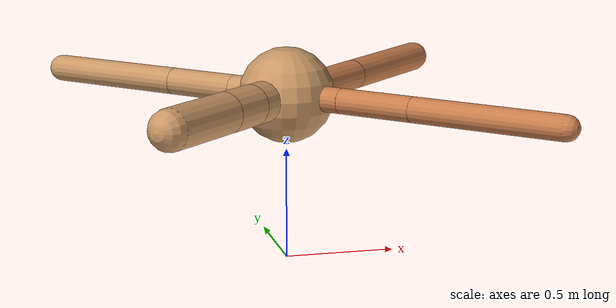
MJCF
<?xml version="1.0" ?>
<mujoco model="ant">

	<compiler angle="degree" coordinate="local" inertiafromgeom="true"/>

	<option integrator="RK4" timestep="0.01"/>

	<custom>

		<numeric data="0.0 0.0 0.55 1.0 0.0 0.0 0.0 0.0 1.0 0.0 -1.0 0.0 -1.0 0.0 1.0" name="init_qpos"/>

	</custom>

	<default>

		<joint armature="1" damping="1" limited="true"/>

		<geom conaffinity="0" condim="3" density="5.0" friction="1.5 0.1 0.1" margin="0.01" rgba="0.8 0.6 0.4 1"/>

	</default>

	<worldbody>

		<body name="torso" pos="0 0 0.75">

			<geom name="torso_geom" pos="0 0 0" size="0.21451559057587347" type="sphere"/>

			<!--joint armature="0" damping="0" limited="false" margin="0.01" name="root" pos="0 0 0" type="free"/-->

			<body name="front_left_leg" pos="0 0 0">

				<geom fromto="0 0 0 0.2 0.2 0" name="aux_1_geom" size="0.06973688005025457" type="capsule" rgba=".8 .5 .3 1"/>

				<body name="aux_1" pos="0.2 0.2 0">

					<joint axis="0 0 1" name="hip_1" pos="0.0 0.0 0.0" range="-40 40" type="hinge"/>

					<geom fromto="0 0 0 0.2156476912128929 0.2156476912128929 0" name="left_leg_geom" size="0.06973688005025457" type="capsule" rgba=".8 .5 .3 1"/>

					<body pos="0.2156476912128929 0.2156476912128929 0" name="front_left_foot">

						<joint axis="-1 1 0" name="ankle_1" pos="0.0 0.0 0.0" range="30 100" type="hinge"/>

						<geom fromto="0 0 0 0.4312953824257858 0.4312953824257858 0" name="left_ankle_geom" size="0.06973688005025457" type="capsule" rgba=".8 .5 .3 1"/>

					</body>

				</body>

			</body>

			<body name="front_right_leg" pos="0 0 0">

				<geom fromto="0 0 0 -0.2 0.2 0" name="aux_2_geom" size="0.061825308290146756" type="capsule"/>

				<body name="aux_2" pos="-0.2 0.2 0">

					<joint axis="0 0 1" name="hip_2" pos="0.0 0.0 0.0" range="-40 40" type="hinge"/>

					<geom fromto="0 0 0 -0.23610073534904363 0.23610073534904363 0" name="right_leg_geom" size="0.061825308290146756" type="capsule"/>

					<body pos="-0.23610073534904363 0.23610073534904363 0" name="front_right_foot">

						<joint axis="1 1 0" name="ankle_2" pos="0.0 0.0 0.0" range="-100 -30" type="hinge"/>

						<geom fromto="0 0 0 -0.47220147069808727 0.47220147069808727 0" name="right_ankle_geom" size="0.061825308290146756" type="capsule"/>

					</body>

				</body>

			</body>

			<body name="left_back_leg" pos="0 0 0">

				<geom fromto="0 0 0 -0.2 -0.2 0" name="aux_3_geom" size="0.09140863111366324" type="capsule"/>

				<body name="aux_3" pos="-0.2 -0.2 0">

					<joint axis="0 0 1" name="hip_3" pos="0.0 0.0 0.0" range="-40 40" type="hinge"/>

					<geom fromto="0 0 0 -0.1400507814907901 -0.1400507814907901 0" name="back_leg_geom" size="0.09140863111366324" type="capsule"/>

					<body pos="-0.1400507814907901 -0.1400507814907901 0" name="left_back_foot">

						<joint axis="-1 1 0" name="ankle_3" pos="0.0 0.0 0.0" range="-100 -30" type="hinge"/>

						<geom fromto="0 0 0 -0.2801015629815802 -0.2801015629815802 0" name="third_ankle_geom" size="0.09140863111366324" type="capsule"/>

					</body>

				</body>

			</body>

			<body name="right_back_leg" pos="0 0 0">

				<geom fromto="0 0 0 0.2 -0.2 0" name="aux_4_geom" size="0.056652416868646735" type="capsule" rgba=".8 .5 .3 1"/>

				<body name="aux_4" pos="0.2 -0.2 0">

					<joint axis="0 0 1" name="hip_4" pos="0.0 0.0 0.0" range="-40 40" type="hinge"/>

					<geom fromto="0 0 0 0.2470831728955119 -0.2470831728955119 0" name="rightback_leg_geom" size="0.056652416868646735" type="capsule" rgba=".8 .5 .3 1"/>

					<body pos="0.2470831728955119 -0.2470831728955119 0" name="right_back_foot">

						<joint axis="1 1 0" name="ankle_4" pos="0.0 0.0 0.0" range="30 100" type="hinge"/>

						<geom fromto="0 0 0 0.4941663457910238 -0.4941663457910238 0" name="fourth_ankle_geom" size="0.056652416868646735" type="capsule" rgba=".8 .5 .3 1"/>

					</body>

				</body>

			</body>

		</body>

	</worldbody>

	<actuator>

		<motor ctrllimited="true" ctrlrange="-1.0 1.0" joint="hip_4" gear="150"/>

		<motor ctrllimited="true" ctrlrange="-1.0 1.0" joint="ankle_4" gear="150"/>

		<motor ctrllimited="true" ctrlrange="-1.0 1.0" joint="hip_1" gear="150"/>

		<motor ctrllimited="true" ctrlrange="-1.0 1.0" joint="ankle_1" gear="150"/>

		<motor ctrllimited="true" ctrlrange="-1.0 1.0" joint="hip_2" gear="150"/>

		<motor ctrllimited="true" ctrlrange="-1.0 1.0" joint="ankle_2" gear="150"/>

		<motor ctrllimited="true" ctrlrange="-1.0 1.0" joint="hip_3" gear="150"/>

		<motor ctrllimited="true" ctrlrange="-1.0 1.0" joint="ankle_3" gear="150"/>

	</actuator>

</mujoco>
